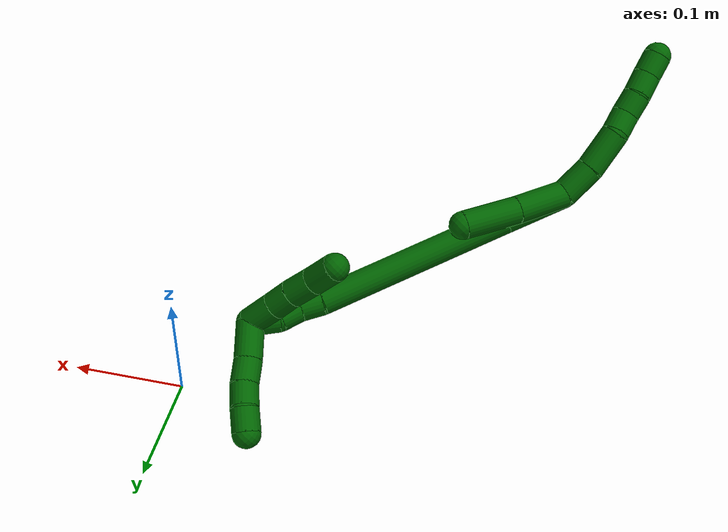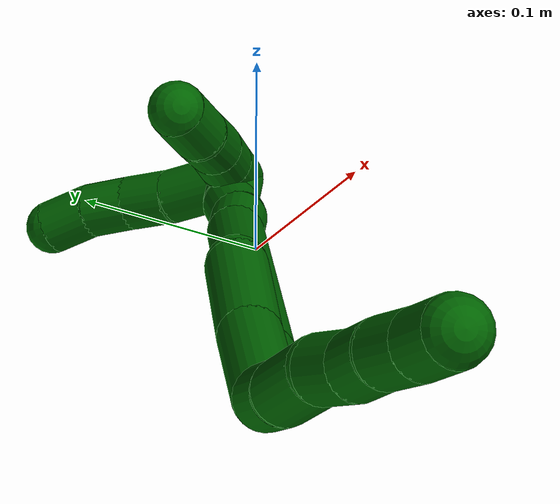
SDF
<sdf version="1.7">
 <world name="default">
  <model name="6">
   <static>0</static>
   <link name="6">
    <collision name="collision-cylinder-e_1_2_8">
     <pose>-0.000198 0.000438 0.015974 -0.027434 -0.012364 0.00017</pose>
     <geometry><cylinder><radius>0.0125</radius><length>0.031963</length></cylinder></geometry>
     <surface>
      <friction><ode><mu>1.16</mu><mu2>1.16</mu2><slip1>0</slip1><slip2>0</slip2></ode></friction>
      <contact><ode><kp>1e+06</kp><kd>1</kd><max_vel>0</max_vel><min_depth>0.001</min_depth></ode></contact>
     </surface>
    </collision>
    <visual name="visual-cylinder-e_1_2_8">
     <pose>-0.000198 0.000438 0.015974 -0.027434 -0.012364 0.00017</pose>
     <geometry><cylinder><radius>0.0125</radius><length>0.031963</length></cylinder></geometry>
     <material><ambient>0 0.392157 0.003922 1</ambient></material>
    </visual>
    <collision name="collision-cylinder-e_2_8_9">
     <pose>0.00219 0.0033 0.050526 -0.129729 0.137097 -0.008919</pose>
     <geometry><cylinder><radius>0.0125</radius><length>0.037825</length></cylinder></geometry>
     <surface>
      <friction><ode><mu>1.16</mu><mu2>1.16</mu2><slip1>0</slip1><slip2>0</slip2></ode></friction>
      <contact><ode><kp>1e+06</kp><kd>1</kd><max_vel>0</max_vel><min_depth>0.001</min_depth></ode></contact>
     </surface>
    </collision>
    <visual name="visual-cylinder-e_2_8_9">
     <pose>0.00219 0.0033 0.050526 -0.129729 0.137097 -0.008919</pose>
     <geometry><cylinder><radius>0.0125</radius><length>0.037825</length></cylinder></geometry>
     <material><ambient>0 0.392157 0.003922 1</ambient></material>
    </visual>
    <collision name="collision-cylinder-e_3_9_10">
     <pose>0.008509 0.005054 0.0784 0.071992 0.381122 0.013893</pose>
     <geometry><cylinder><radius>0.0125</radius><length>0.020081</length></cylinder></geometry>
     <surface>
      <friction><ode><mu>1.16</mu><mu2>1.16</mu2><slip1>0</slip1><slip2>0</slip2></ode></friction>
      <contact><ode><kp>1e+06</kp><kd>1</kd><max_vel>0</max_vel><min_depth>0.001</min_depth></ode></contact>
     </surface>
    </collision>
    <visual name="visual-cylinder-e_3_9_10">
     <pose>0.008509 0.005054 0.0784 0.071992 0.381122 0.013893</pose>
     <geometry><cylinder><radius>0.0125</radius><length>0.020081</length></cylinder></geometry>
     <material><ambient>0 0.392157 0.003922 1</ambient></material>
    </visual>
    <collision name="collision-cylinder-e_4_10_11">
     <pose>0.014565 0.005417 0.097377 -0.106355 0.234028 -0.012514</pose>
     <geometry><cylinder><radius>0.0125</radius><length>0.020019</length></cylinder></geometry>
     <surface>
      <friction><ode><mu>1.16</mu><mu2>1.16</mu2><slip1>0</slip1><slip2>0</slip2></ode></friction>
      <contact><ode><kp>1e+06</kp><kd>1</kd><max_vel>0</max_vel><min_depth>0.001</min_depth></ode></contact>
     </surface>
    </collision>
    <visual name="visual-cylinder-e_4_10_11">
     <pose>0.014565 0.005417 0.097377 -0.106355 0.234028 -0.012514</pose>
     <geometry><cylinder><radius>0.0125</radius><length>0.020019</length></cylinder></geometry>
     <material><ambient>0 0.392157 0.003922 1</ambient></material>
    </visual>
    <collision name="collision-cylinder-e_5_11_12">
     <pose>0.020474 0.006601 0.116439 -0.016032 0.365337 -0.002962</pose>
     <geometry><cylinder><radius>0.0125</radius><length>0.020088</length></cylinder></geometry>
     <surface>
      <friction><ode><mu>1.16</mu><mu2>1.16</mu2><slip1>0</slip1><slip2>0</slip2></ode></friction>
      <contact><ode><kp>1e+06</kp><kd>1</kd><max_vel>0</max_vel><min_depth>0.001</min_depth></ode></contact>
     </surface>
    </collision>
    <visual name="visual-cylinder-e_5_11_12">
     <pose>0.020474 0.006601 0.116439 -0.016032 0.365337 -0.002962</pose>
     <geometry><cylinder><radius>0.0125</radius><length>0.020088</length></cylinder></geometry>
     <material><ambient>0 0.392157 0.003922 1</ambient></material>
    </visual>
    <collision name="collision-cylinder-e_6_12_6">
     <pose>0.027085 0.007548 0.13533 -0.083607 0.306675 -0.012929</pose>
     <geometry><cylinder><radius>0.0125</radius><length>0.020024</length></cylinder></geometry>
     <surface>
      <friction><ode><mu>1.16</mu><mu2>1.16</mu2><slip1>0</slip1><slip2>0</slip2></ode></friction>
      <contact><ode><kp>1e+06</kp><kd>1</kd><max_vel>0</max_vel><min_depth>0.001</min_depth></ode></contact>
     </surface>
    </collision>
    <visual name="visual-cylinder-e_6_12_6">
     <pose>0.027085 0.007548 0.13533 -0.083607 0.306675 -0.012929</pose>
     <geometry><cylinder><radius>0.0125</radius><length>0.020024</length></cylinder></geometry>
     <material><ambient>0 0.392157 0.003922 1</ambient></material>
    </visual>
    <collision name="collision-cylinder-e_1_2_13">
     <pose>0.004193 0.011664 -0.020424 -2.62271 0.176422 -0.643269</pose>
     <geometry><cylinder><radius>0.0125</radius><length>0.047782</length></cylinder></geometry>
     <surface>
      <friction><ode><mu>1.16</mu><mu2>1.16</mu2><slip1>0</slip1><slip2>0</slip2></ode></friction>
      <contact><ode><kp>1e+06</kp><kd>1</kd><max_vel>0</max_vel><min_depth>0.001</min_depth></ode></contact>
     </surface>
    </collision>
    <visual name="visual-cylinder-e_1_2_13">
     <pose>0.004193 0.011664 -0.020424 -2.62271 0.176422 -0.643269</pose>
     <geometry><cylinder><radius>0.0125</radius><length>0.047782</length></cylinder></geometry>
     <material><ambient>0 0.392157 0.003922 1</ambient></material>
    </visual>
    <collision name="collision-cylinder-e_2_13_5">
     <pose>0.013692 0.036978 -0.062463 -2.5783 0.204646 -0.682036</pose>
     <geometry><cylinder><radius>0.0125</radius><length>0.052218</length></cylinder></geometry>
     <surface>
      <friction><ode><mu>1.16</mu><mu2>1.16</mu2><slip1>0</slip1><slip2>0</slip2></ode></friction>
      <contact><ode><kp>1e+06</kp><kd>1</kd><max_vel>0</max_vel><min_depth>0.001</min_depth></ode></contact>
     </surface>
    </collision>
    <visual name="visual-cylinder-e_2_13_5">
     <pose>0.013692 0.036978 -0.062463 -2.5783 0.204646 -0.682036</pose>
     <geometry><cylinder><radius>0.0125</radius><length>0.052218</length></cylinder></geometry>
     <material><ambient>0 0.392157 0.003922 1</ambient></material>
    </visual>
    <collision name="collision-cylinder-e_1_2_14">
     <pose>0.007208 0.007376 -0.02675 -2.87255 0.254157 -1.51327</pose>
     <geometry><cylinder><radius>0.0125</radius><length>0.057339</length></cylinder></geometry>
     <surface>
      <friction><ode><mu>1.16</mu><mu2>1.16</mu2><slip1>0</slip1><slip2>0</slip2></ode></friction>
      <contact><ode><kp>1e+06</kp><kd>1</kd><max_vel>0</max_vel><min_depth>0.001</min_depth></ode></contact>
     </surface>
    </collision>
    <visual name="visual-cylinder-e_1_2_14">
     <pose>0.007208 0.007376 -0.02675 -2.87255 0.254157 -1.51327</pose>
     <geometry><cylinder><radius>0.0125</radius><length>0.057339</length></cylinder></geometry>
     <material><ambient>0 0.392157 0.003922 1</ambient></material>
    </visual>
    <collision name="collision-cylinder-e_2_14_15">
     <pose>0.032973 0.042277 -0.135523 -2.81781 0.211276 -1.15167</pose>
     <geometry><cylinder><radius>0.0125</radius><length>0.176971</length></cylinder></geometry>
     <surface>
      <friction><ode><mu>1.16</mu><mu2>1.16</mu2><slip1>0</slip1><slip2>0</slip2></ode></friction>
      <contact><ode><kp>1e+06</kp><kd>1</kd><max_vel>0</max_vel><min_depth>0.001</min_depth></ode></contact>
     </surface>
    </collision>
    <visual name="visual-cylinder-e_2_14_15">
     <pose>0.032973 0.042277 -0.135523 -2.81781 0.211276 -1.15167</pose>
     <geometry><cylinder><radius>0.0125</radius><length>0.176971</length></cylinder></geometry>
     <material><ambient>0 0.392157 0.003922 1</ambient></material>
    </visual>
    <collision name="collision-cylinder-e_3_15_16">
     <pose>0.055077 0.073247 -0.226562 -2.77681 0.352265 -1.53513</pose>
     <geometry><cylinder><radius>0.0125</radius><length>0.020566</length></cylinder></geometry>
     <surface>
      <friction><ode><mu>1.16</mu><mu2>1.16</mu2><slip1>0</slip1><slip2>0</slip2></ode></friction>
      <contact><ode><kp>1e+06</kp><kd>1</kd><max_vel>0</max_vel><min_depth>0.001</min_depth></ode></contact>
     </surface>
    </collision>
    <visual name="visual-cylinder-e_3_15_16">
     <pose>0.055077 0.073247 -0.226562 -2.77681 0.352265 -1.53513</pose>
     <geometry><cylinder><radius>0.0125</radius><length>0.020566</length></cylinder></geometry>
     <material><ambient>0 0.392157 0.003922 1</ambient></material>
    </visual>
    <collision name="collision-cylinder-e_4_16_17">
     <pose>0.059491 0.080709 -0.244775 -2.72956 0.08611 -0.4066</pose>
     <geometry><cylinder><radius>0.0125</radius><length>0.020149</length></cylinder></geometry>
     <surface>
      <friction><ode><mu>1.16</mu><mu2>1.16</mu2><slip1>0</slip1><slip2>0</slip2></ode></friction>
      <contact><ode><kp>1e+06</kp><kd>1</kd><max_vel>0</max_vel><min_depth>0.001</min_depth></ode></contact>
     </surface>
    </collision>
    <visual name="visual-cylinder-e_4_16_17">
     <pose>0.059491 0.080709 -0.244775 -2.72956 0.08611 -0.4066</pose>
     <geometry><cylinder><radius>0.0125</radius><length>0.020149</length></cylinder></geometry>
     <material><ambient>0 0.392157 0.003922 1</ambient></material>
    </visual>
    <collision name="collision-cylinder-e_5_17_1">
     <pose>0.065245 0.090776 -0.263744 -2.58744 0.402179 -1.24378</pose>
     <geometry><cylinder><radius>0.0125</radius><length>0.024975</length></cylinder></geometry>
     <surface>
      <friction><ode><mu>1.16</mu><mu2>1.16</mu2><slip1>0</slip1><slip2>0</slip2></ode></friction>
      <contact><ode><kp>1e+06</kp><kd>1</kd><max_vel>0</max_vel><min_depth>0.001</min_depth></ode></contact>
     </surface>
    </collision>
    <visual name="visual-cylinder-e_5_17_1">
     <pose>0.065245 0.090776 -0.263744 -2.58744 0.402179 -1.24378</pose>
     <geometry><cylinder><radius>0.0125</radius><length>0.024975</length></cylinder></geometry>
     <material><ambient>0 0.392157 0.003922 1</ambient></material>
    </visual>
    <collision name="collision-cylinder-e_1_1_18">
     <pose>0.056834 0.096637 -0.284873 3.12522 -0.863909 -3.10607</pose>
     <geometry><cylinder><radius>0.0125</radius><length>0.034981</length></cylinder></geometry>
     <surface>
      <friction><ode><mu>1.16</mu><mu2>1.16</mu2><slip1>0</slip1><slip2>0</slip2></ode></friction>
      <contact><ode><kp>1e+06</kp><kd>1</kd><max_vel>0</max_vel><min_depth>0.001</min_depth></ode></contact>
     </surface>
    </collision>
    <visual name="visual-cylinder-e_1_1_18">
     <pose>0.056834 0.096637 -0.284873 3.12522 -0.863909 -3.10607</pose>
     <geometry><cylinder><radius>0.0125</radius><length>0.034981</length></cylinder></geometry>
     <material><ambient>0 0.392157 0.003922 1</ambient></material>
    </visual>
    <collision name="collision-cylinder-e_2_18_19">
     <pose>0.035447 0.097445 -0.30378 -3.01067 -0.815572 2.8404</pose>
     <geometry><cylinder><radius>0.0125</radius><length>0.022216</length></cylinder></geometry>
     <surface>
      <friction><ode><mu>1.16</mu><mu2>1.16</mu2><slip1>0</slip1><slip2>0</slip2></ode></friction>
      <contact><ode><kp>1e+06</kp><kd>1</kd><max_vel>0</max_vel><min_depth>0.001</min_depth></ode></contact>
     </surface>
    </collision>
    <visual name="visual-cylinder-e_2_18_19">
     <pose>0.035447 0.097445 -0.30378 -3.01067 -0.815572 2.8404</pose>
     <geometry><cylinder><radius>0.0125</radius><length>0.022216</length></cylinder></geometry>
     <material><ambient>0 0.392157 0.003922 1</ambient></material>
    </visual>
    <collision name="collision-cylinder-e_3_19_20">
     <pose>0.01853 0.099105 -0.317167 -3.02799 -0.983562 2.93009</pose>
     <geometry><cylinder><radius>0.0125</radius><length>0.021211</length></cylinder></geometry>
     <surface>
      <friction><ode><mu>1.16</mu><mu2>1.16</mu2><slip1>0</slip1><slip2>0</slip2></ode></friction>
      <contact><ode><kp>1e+06</kp><kd>1</kd><max_vel>0</max_vel><min_depth>0.001</min_depth></ode></contact>
     </surface>
    </collision>
    <visual name="visual-cylinder-e_3_19_20">
     <pose>0.01853 0.099105 -0.317167 -3.02799 -0.983562 2.93009</pose>
     <geometry><cylinder><radius>0.0125</radius><length>0.021211</length></cylinder></geometry>
     <material><ambient>0 0.392157 0.003922 1</ambient></material>
    </visual>
    <collision name="collision-cylinder-e_4_20_4">
     <pose>0.000997 0.098331 -0.329228 2.9141 -0.937753 -2.69797</pose>
     <geometry><cylinder><radius>0.0125</radius><length>0.021592</length></cylinder></geometry>
     <surface>
      <friction><ode><mu>1.16</mu><mu2>1.16</mu2><slip1>0</slip1><slip2>0</slip2></ode></friction>
      <contact><ode><kp>1e+06</kp><kd>1</kd><max_vel>0</max_vel><min_depth>0.001</min_depth></ode></contact>
     </surface>
    </collision>
    <visual name="visual-cylinder-e_4_20_4">
     <pose>0.000997 0.098331 -0.329228 2.9141 -0.937753 -2.69797</pose>
     <geometry><cylinder><radius>0.0125</radius><length>0.021592</length></cylinder></geometry>
     <material><ambient>0 0.392157 0.003922 1</ambient></material>
    </visual>
    <collision name="collision-cylinder-e_1_1_21">
     <pose>0.065317 0.100136 -0.260613 -0.251323 -0.34693 0.044264</pose>
     <geometry><cylinder><radius>0.0125</radius><length>0.02833</length></cylinder></geometry>
     <surface>
      <friction><ode><mu>1.16</mu><mu2>1.16</mu2><slip1>0</slip1><slip2>0</slip2></ode></friction>
      <contact><ode><kp>1e+06</kp><kd>1</kd><max_vel>0</max_vel><min_depth>0.001</min_depth></ode></contact>
     </surface>
    </collision>
    <visual name="visual-cylinder-e_1_1_21">
     <pose>0.065317 0.100136 -0.260613 -0.251323 -0.34693 0.044264</pose>
     <geometry><cylinder><radius>0.0125</radius><length>0.02833</length></cylinder></geometry>
     <material><ambient>0 0.392157 0.003922 1</ambient></material>
    </visual>
    <collision name="collision-cylinder-e_2_21_22">
     <pose>0.056887 0.106207 -0.238228 -0.283103 -0.350802 0.050499</pose>
     <geometry><cylinder><radius>0.0125</radius><length>0.021031</length></cylinder></geometry>
     <surface>
      <friction><ode><mu>1.16</mu><mu2>1.16</mu2><slip1>0</slip1><slip2>0</slip2></ode></friction>
      <contact><ode><kp>1e+06</kp><kd>1</kd><max_vel>0</max_vel><min_depth>0.001</min_depth></ode></contact>
     </surface>
    </collision>
    <visual name="visual-cylinder-e_2_21_22">
     <pose>0.056887 0.106207 -0.238228 -0.283103 -0.350802 0.050499</pose>
     <geometry><cylinder><radius>0.0125</radius><length>0.021031</length></cylinder></geometry>
     <material><ambient>0 0.392157 0.003922 1</ambient></material>
    </visual>
    <collision name="collision-cylinder-e_3_22_23">
     <pose>0.048438 0.111666 -0.218111 -0.248616 -0.415041 0.052606</pose>
     <geometry><cylinder><radius>0.0125</radius><length>0.023982</length></cylinder></geometry>
     <surface>
      <friction><ode><mu>1.16</mu><mu2>1.16</mu2><slip1>0</slip1><slip2>0</slip2></ode></friction>
      <contact><ode><kp>1e+06</kp><kd>1</kd><max_vel>0</max_vel><min_depth>0.001</min_depth></ode></contact>
     </surface>
    </collision>
    <visual name="visual-cylinder-e_3_22_23">
     <pose>0.048438 0.111666 -0.218111 -0.248616 -0.415041 0.052606</pose>
     <geometry><cylinder><radius>0.0125</radius><length>0.023982</length></cylinder></geometry>
     <material><ambient>0 0.392157 0.003922 1</ambient></material>
    </visual>
    <collision name="collision-cylinder-e_4_23_3">
     <pose>0.037617 0.119435 -0.196699 -0.4397 -0.465829 0.10592</pose>
     <geometry><cylinder><radius>0.0125</radius><length>0.026657</length></cylinder></geometry>
     <surface>
      <friction><ode><mu>1.16</mu><mu2>1.16</mu2><slip1>0</slip1><slip2>0</slip2></ode></friction>
      <contact><ode><kp>1e+06</kp><kd>1</kd><max_vel>0</max_vel><min_depth>0.001</min_depth></ode></contact>
     </surface>
    </collision>
    <visual name="visual-cylinder-e_4_23_3">
     <pose>0.037617 0.119435 -0.196699 -0.4397 -0.465829 0.10592</pose>
     <geometry><cylinder><radius>0.0125</radius><length>0.026657</length></cylinder></geometry>
     <material><ambient>0 0.392157 0.003922 1</ambient></material>
    </visual>
    <collision name="collision-sphere-3">
     <pose>0.03163 0.124504 -0.185924 0 -0 0</pose>
     <geometry><sphere><radius>0.0125</radius></sphere></geometry>
     <surface>
      <friction><ode><mu>1.16</mu><mu2>1.16</mu2><slip1>0</slip1><slip2>0</slip2></ode></friction>
      <contact><ode><kp>1e+06</kp><kd>1</kd><max_vel>0</max_vel><min_depth>0.001</min_depth></ode></contact>
     </surface>
    </collision>
    <visual name="visual-sphere-3">
     <pose>0.03163 0.124504 -0.185924 0 -0 0</pose>
     <geometry><sphere><radius>0.0125</radius></sphere></geometry>
     <material><ambient>0 0.392157 0.003922 1</ambient></material>
    </visual>
    <collision name="collision-sphere-23">
     <pose>0.043603 0.114366 -0.207475 0 -0 0</pose>
     <geometry><sphere><radius>0.0125</radius></sphere></geometry>
     <surface>
      <friction><ode><mu>1.16</mu><mu2>1.16</mu2><slip1>0</slip1><slip2>0</slip2></ode></friction>
      <contact><ode><kp>1e+06</kp><kd>1</kd><max_vel>0</max_vel><min_depth>0.001</min_depth></ode></contact>
     </surface>
    </collision>
    <visual name="visual-sphere-23">
     <pose>0.043603 0.114366 -0.207475 0 -0 0</pose>
     <geometry><sphere><radius>0.0125</radius></sphere></geometry>
     <material><ambient>0 0.392157 0.003922 1</ambient></material>
    </visual>
    <collision name="collision-sphere-22">
     <pose>0.053273 0.108965 -0.228746 0 -0 0</pose>
     <geometry><sphere><radius>0.0125</radius></sphere></geometry>
     <surface>
      <friction><ode><mu>1.16</mu><mu2>1.16</mu2><slip1>0</slip1><slip2>0</slip2></ode></friction>
      <contact><ode><kp>1e+06</kp><kd>1</kd><max_vel>0</max_vel><min_depth>0.001</min_depth></ode></contact>
     </surface>
    </collision>
    <visual name="visual-sphere-22">
     <pose>0.053273 0.108965 -0.228746 0 -0 0</pose>
     <geometry><sphere><radius>0.0125</radius></sphere></geometry>
     <material><ambient>0 0.392157 0.003922 1</ambient></material>
    </visual>
    <collision name="collision-sphere-21">
     <pose>0.060501 0.103449 -0.24771 0 -0 0</pose>
     <geometry><sphere><radius>0.0125</radius></sphere></geometry>
     <surface>
      <friction><ode><mu>1.16</mu><mu2>1.16</mu2><slip1>0</slip1><slip2>0</slip2></ode></friction>
      <contact><ode><kp>1e+06</kp><kd>1</kd><max_vel>0</max_vel><min_depth>0.001</min_depth></ode></contact>
     </surface>
    </collision>
    <visual name="visual-sphere-21">
     <pose>0.060501 0.103449 -0.24771 0 -0 0</pose>
     <geometry><sphere><radius>0.0125</radius></sphere></geometry>
     <material><ambient>0 0.392157 0.003922 1</ambient></material>
    </visual>
    <collision name="collision-sphere-4">
     <pose>-0.007707 0.09689 -0.33545 0 -0 0</pose>
     <geometry><sphere><radius>0.0125</radius></sphere></geometry>
     <surface>
      <friction><ode><mu>1.16</mu><mu2>1.16</mu2><slip1>0</slip1><slip2>0</slip2></ode></friction>
      <contact><ode><kp>1e+06</kp><kd>1</kd><max_vel>0</max_vel><min_depth>0.001</min_depth></ode></contact>
     </surface>
    </collision>
    <visual name="visual-sphere-4">
     <pose>-0.007707 0.09689 -0.33545 0 -0 0</pose>
     <geometry><sphere><radius>0.0125</radius></sphere></geometry>
     <material><ambient>0 0.392157 0.003922 1</ambient></material>
    </visual>
    <collision name="collision-sphere-20">
     <pose>0.009701 0.099771 -0.323005 0 -0 0</pose>
     <geometry><sphere><radius>0.0125</radius></sphere></geometry>
     <surface>
      <friction><ode><mu>1.16</mu><mu2>1.16</mu2><slip1>0</slip1><slip2>0</slip2></ode></friction>
      <contact><ode><kp>1e+06</kp><kd>1</kd><max_vel>0</max_vel><min_depth>0.001</min_depth></ode></contact>
     </surface>
    </collision>
    <visual name="visual-sphere-20">
     <pose>0.009701 0.099771 -0.323005 0 -0 0</pose>
     <geometry><sphere><radius>0.0125</radius></sphere></geometry>
     <material><ambient>0 0.392157 0.003922 1</ambient></material>
    </visual>
    <collision name="collision-sphere-12">
     <pose>0.024063 0.006751 0.125819 0 -0 0</pose>
     <geometry><sphere><radius>0.0125</radius></sphere></geometry>
     <surface>
      <friction><ode><mu>1.16</mu><mu2>1.16</mu2><slip1>0</slip1><slip2>0</slip2></ode></friction>
      <contact><ode><kp>1e+06</kp><kd>1</kd><max_vel>0</max_vel><min_depth>0.001</min_depth></ode></contact>
     </surface>
    </collision>
    <visual name="visual-sphere-12">
     <pose>0.024063 0.006751 0.125819 0 -0 0</pose>
     <geometry><sphere><radius>0.0125</radius></sphere></geometry>
     <material><ambient>0 0.392157 0.003922 1</ambient></material>
    </visual>
    <collision name="collision-sphere-11">
     <pose>0.016886 0.00645 0.107059 0 -0 0</pose>
     <geometry><sphere><radius>0.0125</radius></sphere></geometry>
     <surface>
      <friction><ode><mu>1.16</mu><mu2>1.16</mu2><slip1>0</slip1><slip2>0</slip2></ode></friction>
      <contact><ode><kp>1e+06</kp><kd>1</kd><max_vel>0</max_vel><min_depth>0.001</min_depth></ode></contact>
     </surface>
    </collision>
    <visual name="visual-sphere-11">
     <pose>0.016886 0.00645 0.107059 0 -0 0</pose>
     <geometry><sphere><radius>0.0125</radius></sphere></geometry>
     <material><ambient>0 0.392157 0.003922 1</ambient></material>
    </visual>
    <collision name="collision-sphere-10">
     <pose>0.012244 0.004383 0.087696 0 -0 0</pose>
     <geometry><sphere><radius>0.0125</radius></sphere></geometry>
     <surface>
      <friction><ode><mu>1.16</mu><mu2>1.16</mu2><slip1>0</slip1><slip2>0</slip2></ode></friction>
      <contact><ode><kp>1e+06</kp><kd>1</kd><max_vel>0</max_vel><min_depth>0.001</min_depth></ode></contact>
     </surface>
    </collision>
    <visual name="visual-sphere-10">
     <pose>0.012244 0.004383 0.087696 0 -0 0</pose>
     <geometry><sphere><radius>0.0125</radius></sphere></geometry>
     <material><ambient>0 0.392157 0.003922 1</ambient></material>
    </visual>
    <collision name="collision-sphere-9">
     <pose>0.004774 0.005724 0.069104 0 -0 0</pose>
     <geometry><sphere><radius>0.0125</radius></sphere></geometry>
     <surface>
      <friction><ode><mu>1.16</mu><mu2>1.16</mu2><slip1>0</slip1><slip2>0</slip2></ode></friction>
      <contact><ode><kp>1e+06</kp><kd>1</kd><max_vel>0</max_vel><min_depth>0.001</min_depth></ode></contact>
     </surface>
    </collision>
    <visual name="visual-sphere-9">
     <pose>0.004774 0.005724 0.069104 0 -0 0</pose>
     <geometry><sphere><radius>0.0125</radius></sphere></geometry>
     <material><ambient>0 0.392157 0.003922 1</ambient></material>
    </visual>
    <collision name="collision-sphere-2">
     <geometry><sphere><radius>0.0125</radius></sphere></geometry>
     <surface>
      <friction><ode><mu>1.16</mu><mu2>1.16</mu2><slip1>0</slip1><slip2>0</slip2></ode></friction>
      <contact><ode><kp>1e+06</kp><kd>1</kd><max_vel>0</max_vel><min_depth>0.001</min_depth></ode></contact>
     </surface>
    </collision>
    <visual name="visual-sphere-2">
     <geometry><sphere><radius>0.0125</radius></sphere></geometry>
     <material><ambient>0 0.392157 0.003922 1</ambient></material>
    </visual>
    <collision name="collision-sphere-19">
     <pose>0.027359 0.098439 -0.311329 0 -0 0</pose>
     <geometry><sphere><radius>0.0125</radius></sphere></geometry>
     <surface>
      <friction><ode><mu>1.16</mu><mu2>1.16</mu2><slip1>0</slip1><slip2>0</slip2></ode></friction>
      <contact><ode><kp>1e+06</kp><kd>1</kd><max_vel>0</max_vel><min_depth>0.001</min_depth></ode></contact>
     </surface>
    </collision>
    <visual name="visual-sphere-19">
     <pose>0.027359 0.098439 -0.311329 0 -0 0</pose>
     <geometry><sphere><radius>0.0125</radius></sphere></geometry>
     <material><ambient>0 0.392157 0.003922 1</ambient></material>
    </visual>
    <collision name="collision-sphere-8">
     <pose>-0.000395 0.000877 0.031949 0 -0 0</pose>
     <geometry><sphere><radius>0.0125</radius></sphere></geometry>
     <surface>
      <friction><ode><mu>1.16</mu><mu2>1.16</mu2><slip1>0</slip1><slip2>0</slip2></ode></friction>
      <contact><ode><kp>1e+06</kp><kd>1</kd><max_vel>0</max_vel><min_depth>0.001</min_depth></ode></contact>
     </surface>
    </collision>
    <visual name="visual-sphere-8">
     <pose>-0.000395 0.000877 0.031949 0 -0 0</pose>
     <geometry><sphere><radius>0.0125</radius></sphere></geometry>
     <material><ambient>0 0.392157 0.003922 1</ambient></material>
    </visual>
    <collision name="collision-sphere-6">
     <pose>0.030108 0.008345 0.144842 0 -0 0</pose>
     <geometry><sphere><radius>0.0125</radius></sphere></geometry>
     <surface>
      <friction><ode><mu>1.16</mu><mu2>1.16</mu2><slip1>0</slip1><slip2>0</slip2></ode></friction>
      <contact><ode><kp>1e+06</kp><kd>1</kd><max_vel>0</max_vel><min_depth>0.001</min_depth></ode></contact>
     </surface>
    </collision>
    <visual name="visual-sphere-6">
     <pose>0.030108 0.008345 0.144842 0 -0 0</pose>
     <geometry><sphere><radius>0.0125</radius></sphere></geometry>
     <material><ambient>0 0.392157 0.003922 1</ambient></material>
    </visual>
    <collision name="collision-sphere-13">
     <pose>0.008386 0.023328 -0.040849 0 -0 0</pose>
     <geometry><sphere><radius>0.0125</radius></sphere></geometry>
     <surface>
      <friction><ode><mu>1.16</mu><mu2>1.16</mu2><slip1>0</slip1><slip2>0</slip2></ode></friction>
      <contact><ode><kp>1e+06</kp><kd>1</kd><max_vel>0</max_vel><min_depth>0.001</min_depth></ode></contact>
     </surface>
    </collision>
    <visual name="visual-sphere-13">
     <pose>0.008386 0.023328 -0.040849 0 -0 0</pose>
     <geometry><sphere><radius>0.0125</radius></sphere></geometry>
     <material><ambient>0 0.392157 0.003922 1</ambient></material>
    </visual>
    <collision name="collision-sphere-5">
     <pose>0.018998 0.050629 -0.084078 0 -0 0</pose>
     <geometry><sphere><radius>0.0125</radius></sphere></geometry>
     <surface>
      <friction><ode><mu>1.16</mu><mu2>1.16</mu2><slip1>0</slip1><slip2>0</slip2></ode></friction>
      <contact><ode><kp>1e+06</kp><kd>1</kd><max_vel>0</max_vel><min_depth>0.001</min_depth></ode></contact>
     </surface>
    </collision>
    <visual name="visual-sphere-5">
     <pose>0.018998 0.050629 -0.084078 0 -0 0</pose>
     <geometry><sphere><radius>0.0125</radius></sphere></geometry>
     <material><ambient>0 0.392157 0.003922 1</ambient></material>
    </visual>
    <collision name="collision-sphere-14">
     <pose>0.014417 0.014751 -0.0535 0 -0 0</pose>
     <geometry><sphere><radius>0.0125</radius></sphere></geometry>
     <surface>
      <friction><ode><mu>1.16</mu><mu2>1.16</mu2><slip1>0</slip1><slip2>0</slip2></ode></friction>
      <contact><ode><kp>1e+06</kp><kd>1</kd><max_vel>0</max_vel><min_depth>0.001</min_depth></ode></contact>
     </surface>
    </collision>
    <visual name="visual-sphere-14">
     <pose>0.014417 0.014751 -0.0535 0 -0 0</pose>
     <geometry><sphere><radius>0.0125</radius></sphere></geometry>
     <material><ambient>0 0.392157 0.003922 1</ambient></material>
    </visual>
    <collision name="collision-sphere-15">
     <pose>0.051529 0.069804 -0.217545 0 -0 0</pose>
     <geometry><sphere><radius>0.0125</radius></sphere></geometry>
     <surface>
      <friction><ode><mu>1.16</mu><mu2>1.16</mu2><slip1>0</slip1><slip2>0</slip2></ode></friction>
      <contact><ode><kp>1e+06</kp><kd>1</kd><max_vel>0</max_vel><min_depth>0.001</min_depth></ode></contact>
     </surface>
    </collision>
    <visual name="visual-sphere-15">
     <pose>0.051529 0.069804 -0.217545 0 -0 0</pose>
     <geometry><sphere><radius>0.0125</radius></sphere></geometry>
     <material><ambient>0 0.392157 0.003922 1</ambient></material>
    </visual>
    <collision name="collision-sphere-16">
     <pose>0.058625 0.07669 -0.235578 0 -0 0</pose>
     <geometry><sphere><radius>0.0125</radius></sphere></geometry>
     <surface>
      <friction><ode><mu>1.16</mu><mu2>1.16</mu2><slip1>0</slip1><slip2>0</slip2></ode></friction>
      <contact><ode><kp>1e+06</kp><kd>1</kd><max_vel>0</max_vel><min_depth>0.001</min_depth></ode></contact>
     </surface>
    </collision>
    <visual name="visual-sphere-16">
     <pose>0.058625 0.07669 -0.235578 0 -0 0</pose>
     <geometry><sphere><radius>0.0125</radius></sphere></geometry>
     <material><ambient>0 0.392157 0.003922 1</ambient></material>
    </visual>
    <collision name="collision-sphere-17">
     <pose>0.060357 0.084729 -0.253972 0 -0 0</pose>
     <geometry><sphere><radius>0.0125</radius></sphere></geometry>
     <surface>
      <friction><ode><mu>1.16</mu><mu2>1.16</mu2><slip1>0</slip1><slip2>0</slip2></ode></friction>
      <contact><ode><kp>1e+06</kp><kd>1</kd><max_vel>0</max_vel><min_depth>0.001</min_depth></ode></contact>
     </surface>
    </collision>
    <visual name="visual-sphere-17">
     <pose>0.060357 0.084729 -0.253972 0 -0 0</pose>
     <geometry><sphere><radius>0.0125</radius></sphere></geometry>
     <material><ambient>0 0.392157 0.003922 1</ambient></material>
    </visual>
    <collision name="collision-sphere-1">
     <pose>0.070133 0.096823 -0.273515 0 -0 0</pose>
     <geometry><sphere><radius>0.0125</radius></sphere></geometry>
     <surface>
      <friction><ode><mu>1.16</mu><mu2>1.16</mu2><slip1>0</slip1><slip2>0</slip2></ode></friction>
      <contact><ode><kp>1e+06</kp><kd>1</kd><max_vel>0</max_vel><min_depth>0.001</min_depth></ode></contact>
     </surface>
    </collision>
    <visual name="visual-sphere-1">
     <pose>0.070133 0.096823 -0.273515 0 -0 0</pose>
     <geometry><sphere><radius>0.0125</radius></sphere></geometry>
     <material><ambient>0 0.392157 0.003922 1</ambient></material>
    </visual>
    <collision name="collision-sphere-18">
     <pose>0.043534 0.096451 -0.296231 0 -0 0</pose>
     <geometry><sphere><radius>0.0125</radius></sphere></geometry>
     <surface>
      <friction><ode><mu>1.16</mu><mu2>1.16</mu2><slip1>0</slip1><slip2>0</slip2></ode></friction>
      <contact><ode><kp>1e+06</kp><kd>1</kd><max_vel>0</max_vel><min_depth>0.001</min_depth></ode></contact>
     </surface>
    </collision>
    <visual name="visual-sphere-18">
     <pose>0.043534 0.096451 -0.296231 0 -0 0</pose>
     <geometry><sphere><radius>0.0125</radius></sphere></geometry>
     <material><ambient>0 0.392157 0.003922 1</ambient></material>
    </visual>
    <inertial>
     <pose>0.028025 0.049504 -0.117809 0 -0 0</pose>
     <mass>0.75</mass>
     <inertia>
      <ixx>-0.000228</ixx>
      <ixy>0</ixy>
      <ixz>0</ixz>
      <iyy>-0.000574</iyy>
      <iyz>0</iyz>
      <izz>-0.000284</izz>
     </inertia>
    </inertial>
   </link>
   <pose>-0.304741 -0.18599 0.131314 1.00057 -0.086827 -0.727512</pose>
  </model>
 </world>
</sdf>
